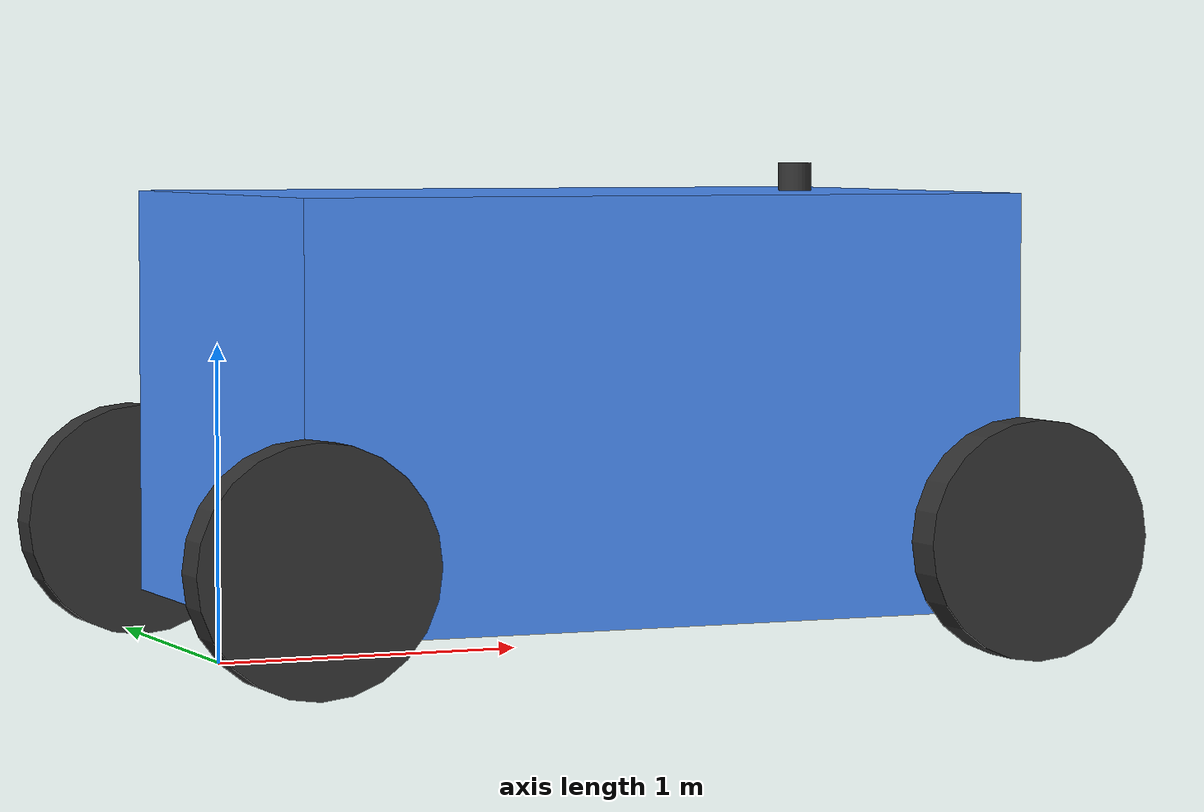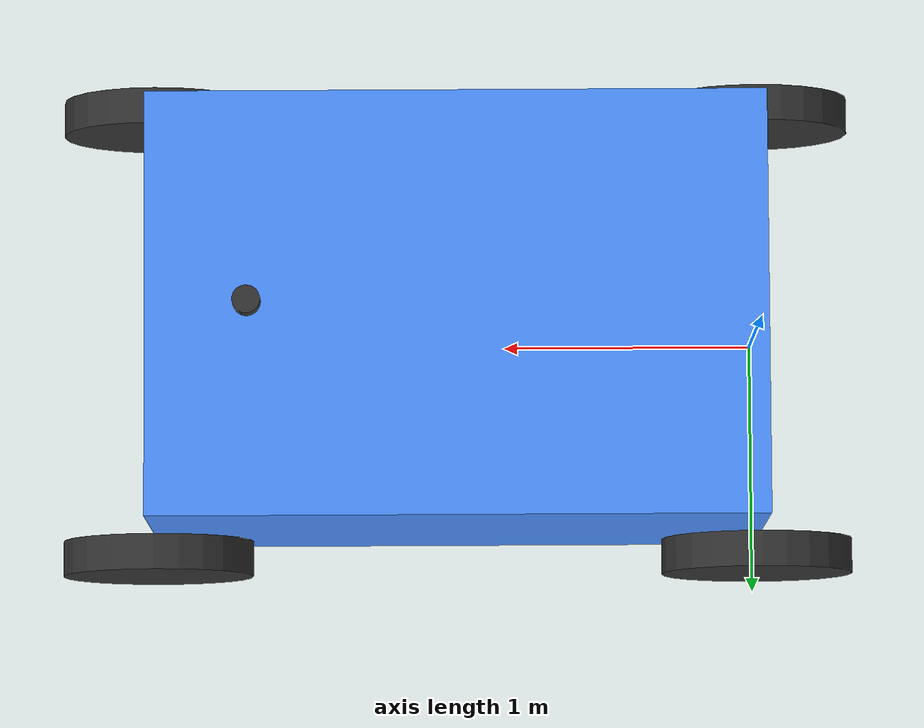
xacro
<?xml version="1.0"?>

<!-- A simple model of the racecar for rviz -->

<robot xmlns:xacro="http://www.ros.org/wiki/xacro" name="racecar">

  <xacro:property name="wheelbase" value="2.39268" /> <!-- TODO: change to full scale params -->
  <xacro:property name="width" value="1.64" />
  <xacro:property name="height" value="1.32" />
  <xacro:property name="ground_offset" value="0.14986" />
  <xacro:property name="wheel_radius" value="0.381" />
  <xacro:property name="wheel_length" value="0.1397" />
  <xacro:property name="laser_distance_from_base_link" value="2.0" />
  <xacro:property name="laser_height" value="0.09" />
  <xacro:property name="laser_radius" value="0.054" />
  <xacro:property name="car_name" value="ego_racecar" />

  <material name="black">
    <color rgba="0.2 0.2 0.2 1."/>
  </material>

  <material name="blue">
    <color rgba="0.3 0.57 1. 1."/>
  </material>

  <link name="${car_name}/base_link">
    <visual>
      <origin xyz="${wheelbase/2} 0 ${ground_offset+height/2}"/>
      <geometry>
        <box size="${wheelbase} ${width} ${height}"/>
      </geometry>
      <material name="blue"/>
    </visual>
  </link>

  <joint name="base_to_laser_model" type="fixed">
    <parent link="${car_name}/base_link"/>
    <child link="${car_name}/laser_model"/>
    <origin xyz="${laser_distance_from_base_link} 0 ${ground_offset+height+(laser_height/2)}"/>
  </joint>

  <link name="${car_name}/laser_model">
    <visual>
      <geometry>
        <cylinder radius="${laser_radius}" length="${laser_height}"/>
      </geometry>
      <material name="black"/>
    </visual>
  </link>

  <joint name="$base_to_back_left_wheel" type="fixed">
    <parent link="${car_name}/base_link"/>
    <child link="${car_name}/back_left_wheel"/>
    <origin xyz="0 ${(wheel_length+width)/2} ${wheel_radius}"/>
  </joint>

  <link name="${car_name}/back_left_wheel">
    <visual>
      <geometry>
        <cylinder radius="${wheel_radius}" length="${wheel_length}"/>
      </geometry>
      <material name="black"/>
      <origin rpy="${pi/2} 0 0"/>
    </visual>
  </link>

  <joint name="base_to_back_right_wheel" type="fixed">
    <parent link="${car_name}/base_link"/>
    <child link="${car_name}/back_right_wheel"/>
    <origin xyz="0 ${-(wheel_length+width)/2} ${wheel_radius}"/>
  </joint>

  <link name="${car_name}/back_right_wheel">
    <visual>
      <geometry>
        <cylinder radius="${wheel_radius}" length="${wheel_length}"/>
      </geometry>
      <material name="black"/>
      <origin rpy="${pi/2} 0 0"/>
    </visual>
  </link>

  <joint name="base_to_front_left_hinge" type="fixed">
    <parent link="${car_name}/base_link"/>
    <child link="${car_name}/front_left_hinge"/>
    <origin xyz="${wheelbase} ${(wheel_length+width)/2} ${wheel_radius}"/>
  </joint>

  <link name="${car_name}/front_left_hinge"/>

  <joint name="front_left_hinge_to_wheel" type="continuous">
    <parent link="${car_name}/front_left_hinge"/>
    <child link="${car_name}/front_left_wheel"/>
  </joint>

  <link name="${car_name}/front_left_wheel">
    <visual>
      <geometry>
        <cylinder radius="${wheel_radius}" length="${wheel_length}"/>
      </geometry>
      <material name="black"/>
      <origin rpy="${pi/2} 0 0"/>
    </visual>
  </link>

  <joint name="base_to_front_right_hinge" type="fixed">
    <parent link="${car_name}/base_link"/>
    <child link="${car_name}/front_right_hinge"/>
    <origin xyz="${wheelbase} ${-(wheel_length+width)/2} ${wheel_radius}"/>
  </joint>

  <link name="${car_name}/front_right_hinge"/>

  <joint name="front_right_hinge_to_wheel" type="continuous">
    <parent link="${car_name}/front_right_hinge"/>
    <child link="${car_name}/front_right_wheel"/>
  </joint>

  <link name="${car_name}/front_right_wheel">
    <visual>
      <geometry>
        <cylinder radius="${wheel_radius}" length="${wheel_length}"/>
      </geometry>
      <material name="black"/>
      <origin rpy="${pi/2} 0 0"/>
    </visual>
  </link>

</robot>
